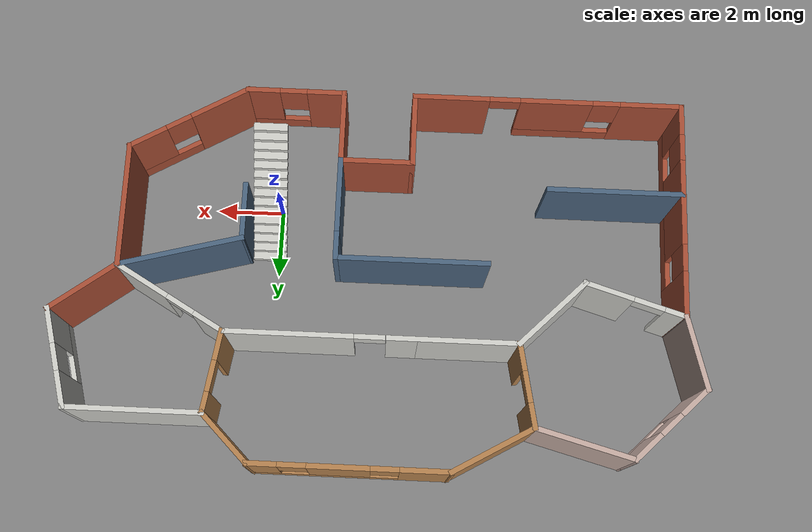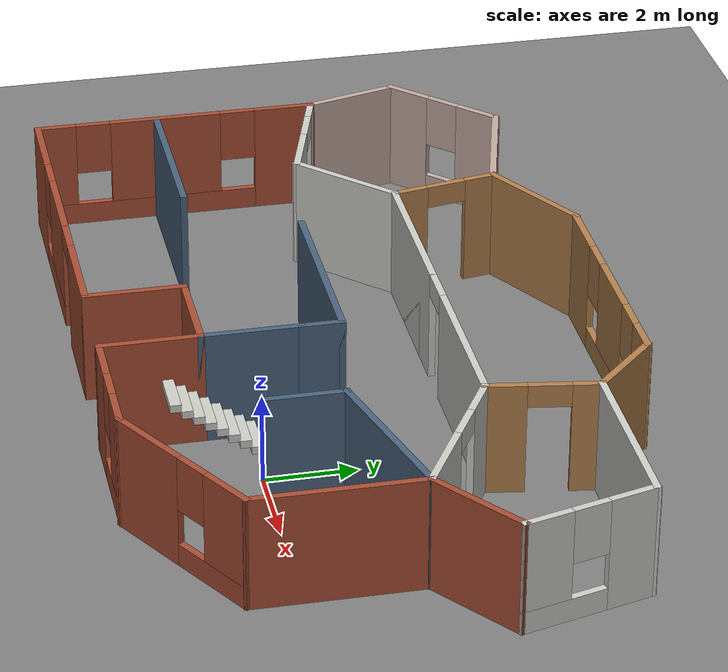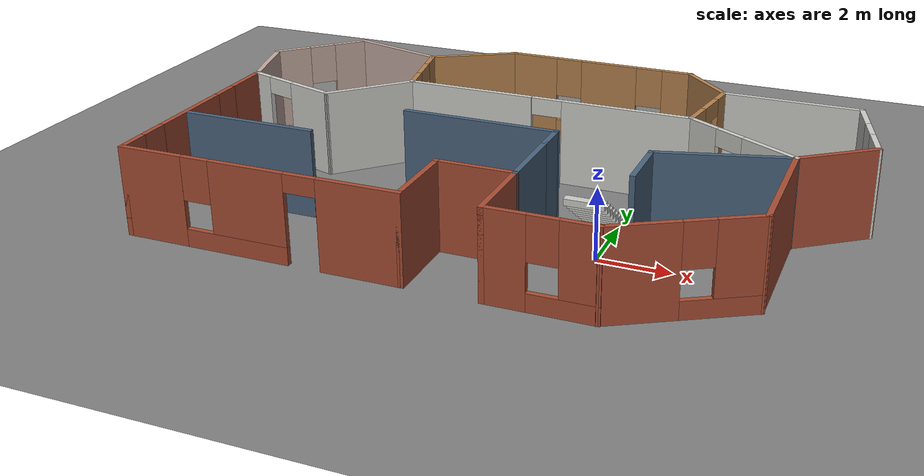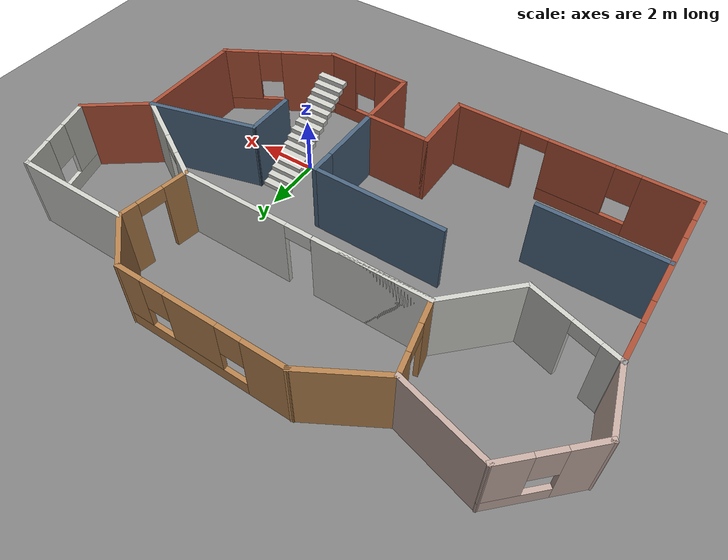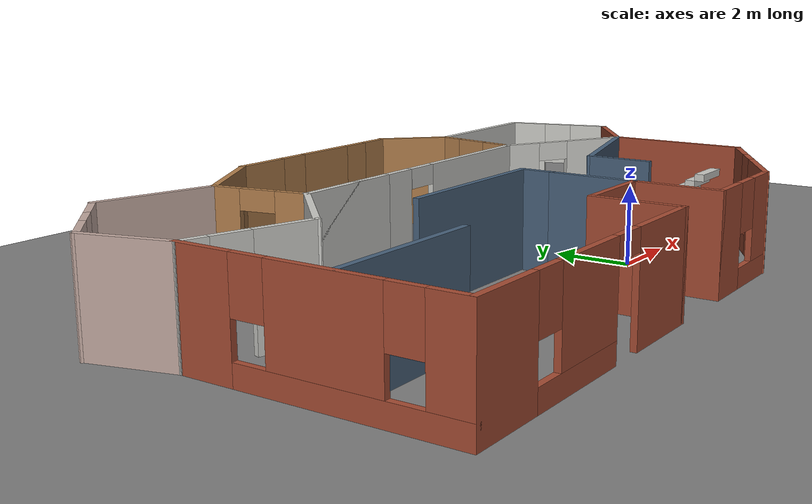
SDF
<sdf version="1.6">
 <world name="default">
  <model name="ground_plane">
   <static>1</static>
   <link name="link">
    <collision name="collision">
     <geometry><plane><normal>0 0 1</normal><size>100 100</size></plane></geometry>
    </collision>
    <visual name="visual">
     <geometry><plane><normal>0 0 1</normal><size>100 100</size></plane></geometry>
     <material>
      <ambient>0.5 0.5 0.5 1</ambient>
      <diffuse>0.5 0.5 0.5 1</diffuse>
      <specular>0.1 0.1 0.1 1</specular>
     </material>
    </visual>
   </link>
  </model>
  <model name="Office">
   <pose>-3.04392 2.451 0 0 -0 0</pose>
   <link name="Stairs_0">
    <visual name="Stairs_0_Visual_0">
     <pose>3.33571 -1.04566 0.083333 0 -0 0</pose>
     <geometry><box><size>1 0.233333 0.166667</size></box></geometry>
     <material>
      <script><uri>file://media/materials/scripts/gazebo.material</uri><name>Gazebo/CeilingTiled</name></script>
      <ambient>1 1 1 1</ambient>
     </material>
     <meta><layer>0</layer></meta>
    </visual>
    <collision name="Stairs_0_Collision_0">
     <geometry><box><size>1 0.233333 0.166667</size></box></geometry>
     <pose>3.33571 -1.04566 0.083333 0 -0 0</pose>
    </collision>
    <visual name="Stairs_0_Visual_1">
     <pose>3.33571 -1.279 0.25 0 -0 0</pose>
     <geometry><box><size>1 0.233333 0.166667</size></box></geometry>
     <material>
      <script><uri>file://media/materials/scripts/gazebo.material</uri><name>Gazebo/CeilingTiled</name></script>
      <ambient>1 1 1 1</ambient>
     </material>
     <meta><layer>0</layer></meta>
    </visual>
    <collision name="Stairs_0_Collision_1">
     <geometry><box><size>1 0.233333 0.166667</size></box></geometry>
     <pose>3.33571 -1.279 0.25 0 -0 0</pose>
    </collision>
    <visual name="Stairs_0_Visual_2">
     <pose>3.33571 -1.51233 0.416667 0 -0 0</pose>
     <geometry><box><size>1 0.233333 0.166667</size></box></geometry>
     <material>
      <script><uri>file://media/materials/scripts/gazebo.material</uri><name>Gazebo/CeilingTiled</name></script>
      <ambient>1 1 1 1</ambient>
     </material>
     <meta><layer>0</layer></meta>
    </visual>
    <collision name="Stairs_0_Collision_2">
     <geometry><box><size>1 0.233333 0.166667</size></box></geometry>
     <pose>3.33571 -1.51233 0.416667 0 -0 0</pose>
    </collision>
    <visual name="Stairs_0_Visual_3">
     <pose>3.33571 -1.74566 0.583333 0 -0 0</pose>
     <geometry><box><size>1 0.233333 0.166667</size></box></geometry>
     <material>
      <script><uri>file://media/materials/scripts/gazebo.material</uri><name>Gazebo/CeilingTiled</name></script>
      <ambient>1 1 1 1</ambient>
     </material>
     <meta><layer>0</layer></meta>
    </visual>
    <collision name="Stairs_0_Collision_3">
     <geometry><box><size>1 0.233333 0.166667</size></box></geometry>
     <pose>3.33571 -1.74566 0.583333 0 -0 0</pose>
    </collision>
    <visual name="Stairs_0_Visual_4">
     <pose>3.33571 -1.979 0.75 0 -0 0</pose>
     <geometry><box><size>1 0.233333 0.166667</size></box></geometry>
     <material>
      <script><uri>file://media/materials/scripts/gazebo.material</uri><name>Gazebo/CeilingTiled</name></script>
      <ambient>1 1 1 1</ambient>
     </material>
     <meta><layer>0</layer></meta>
    </visual>
    <collision name="Stairs_0_Collision_4">
     <geometry><box><size>1 0.233333 0.166667</size></box></geometry>
     <pose>3.33571 -1.979 0.75 0 -0 0</pose>
    </collision>
    <visual name="Stairs_0_Visual_5">
     <pose>3.33571 -2.21233 0.916667 0 -0 0</pose>
     <geometry><box><size>1 0.233333 0.166667</size></box></geometry>
     <material>
      <script><uri>file://media/materials/scripts/gazebo.material</uri><name>Gazebo/CeilingTiled</name></script>
      <ambient>1 1 1 1</ambient>
     </material>
     <meta><layer>0</layer></meta>
    </visual>
    <collision name="Stairs_0_Collision_5">
     <geometry><box><size>1 0.233333 0.166667</size></box></geometry>
     <pose>3.33571 -2.21233 0.916667 0 -0 0</pose>
    </collision>
    <visual name="Stairs_0_Visual_6">
     <pose>3.33571 -2.44566 1.08333 0 -0 0</pose>
     <geometry><box><size>1 0.233333 0.166667</size></box></geometry>
     <material>
      <script><uri>file://media/materials/scripts/gazebo.material</uri><name>Gazebo/CeilingTiled</name></script>
      <ambient>1 1 1 1</ambient>
     </material>
     <meta><layer>0</layer></meta>
    </visual>
    <collision name="Stairs_0_Collision_6">
     <geometry><box><size>1 0.233333 0.166667</size></box></geometry>
     <pose>3.33571 -2.44566 1.08333 0 -0 0</pose>
    </collision>
    <visual name="Stairs_0_Visual_7">
     <pose>3.33571 -2.679 1.25 0 -0 0</pose>
     <geometry><box><size>1 0.233333 0.166667</size></box></geometry>
     <material>
      <script><uri>file://media/materials/scripts/gazebo.material</uri><name>Gazebo/CeilingTiled</name></script>
      <ambient>1 1 1 1</ambient>
     </material>
     <meta><layer>0</layer></meta>
    </visual>
    <collision name="Stairs_0_Collision_7">
     <geometry><box><size>1 0.233333 0.166667</size></box></geometry>
     <pose>3.33571 -2.679 1.25 0 -0 0</pose>
    </collision>
    <visual name="Stairs_0_Visual_8">
     <pose>3.33571 -2.91233 1.41667 0 -0 0</pose>
     <geometry><box><size>1 0.233333 0.166667</size></box></geometry>
     <material>
      <script><uri>file://media/materials/scripts/gazebo.material</uri><name>Gazebo/CeilingTiled</name></script>
      <ambient>1 1 1 1</ambient>
     </material>
     <meta><layer>0</layer></meta>
    </visual>
    <collision name="Stairs_0_Collision_8">
     <geometry><box><size>1 0.233333 0.166667</size></box></geometry>
     <pose>3.33571 -2.91233 1.41667 0 -0 0</pose>
    </collision>
    <visual name="Stairs_0_Visual_9">
     <pose>3.33571 -3.14566 1.58333 0 -0 0</pose>
     <geometry><box><size>1 0.233333 0.166667</size></box></geometry>
     <material>
      <script><uri>file://media/materials/scripts/gazebo.material</uri><name>Gazebo/CeilingTiled</name></script>
      <ambient>1 1 1 1</ambient>
     </material>
     <meta><layer>0</layer></meta>
    </visual>
    <collision name="Stairs_0_Collision_9">
     <geometry><box><size>1 0.233333 0.166667</size></box></geometry>
     <pose>3.33571 -3.14566 1.58333 0 -0 0</pose>
    </collision>
    <visual name="Stairs_0_Visual_10">
     <pose>3.33571 -3.379 1.75 0 -0 0</pose>
     <geometry><box><size>1 0.233333 0.166667</size></box></geometry>
     <material>
      <script><uri>file://media/materials/scripts/gazebo.material</uri><name>Gazebo/CeilingTiled</name></script>
      <ambient>1 1 1 1</ambient>
     </material>
     <meta><layer>0</layer></meta>
    </visual>
    <collision name="Stairs_0_Collision_10">
     <geometry><box><size>1 0.233333 0.166667</size></box></geometry>
     <pose>3.33571 -3.379 1.75 0 -0 0</pose>
    </collision>
    <visual name="Stairs_0_Visual_11">
     <pose>3.33571 -3.61233 1.91667 0 -0 0</pose>
     <geometry><box><size>1 0.233333 0.166667</size></box></geometry>
     <material>
      <script><uri>file://media/materials/scripts/gazebo.material</uri><name>Gazebo/CeilingTiled</name></script>
      <ambient>1 1 1 1</ambient>
     </material>
     <meta><layer>0</layer></meta>
    </visual>
    <collision name="Stairs_0_Collision_11">
     <geometry><box><size>1 0.233333 0.166667</size></box></geometry>
     <pose>3.33571 -3.61233 1.91667 0 -0 0</pose>
    </collision>
    <visual name="Stairs_0_Visual_12">
     <pose>3.33571 -3.84566 2.08333 0 -0 0</pose>
     <geometry><box><size>1 0.233333 0.166667</size></box></geometry>
     <material>
      <script><uri>file://media/materials/scripts/gazebo.material</uri><name>Gazebo/CeilingTiled</name></script>
      <ambient>1 1 1 1</ambient>
     </material>
     <meta><layer>0</layer></meta>
    </visual>
    <collision name="Stairs_0_Collision_12">
     <geometry><box><size>1 0.233333 0.166667</size></box></geometry>
     <pose>3.33571 -3.84566 2.08333 0 -0 0</pose>
    </collision>
    <visual name="Stairs_0_Visual_13">
     <pose>3.33571 -4.079 2.25 0 -0 0</pose>
     <geometry><box><size>1 0.233333 0.166667</size></box></geometry>
     <material>
      <script><uri>file://media/materials/scripts/gazebo.material</uri><name>Gazebo/CeilingTiled</name></script>
      <ambient>1 1 1 1</ambient>
     </material>
     <meta><layer>0</layer></meta>
    </visual>
    <collision name="Stairs_0_Collision_13">
     <geometry><box><size>1 0.233333 0.166667</size></box></geometry>
     <pose>3.33571 -4.079 2.25 0 -0 0</pose>
    </collision>
    <visual name="Stairs_0_Visual_14">
     <pose>3.33571 -4.31233 2.41667 0 -0 0</pose>
     <geometry><box><size>1 0.233333 0.166667</size></box></geometry>
     <material>
      <script><uri>file://media/materials/scripts/gazebo.material</uri><name>Gazebo/CeilingTiled</name></script>
      <ambient>1 1 1 1</ambient>
     </material>
     <meta><layer>0</layer></meta>
    </visual>
    <collision name="Stairs_0_Collision_14">
     <geometry><box><size>1 0.233333 0.166667</size></box></geometry>
     <pose>3.33571 -4.31233 2.41667 0 -0 0</pose>
    </collision>
   </link>
   <link name="Wall_1">
    <pose>-8.71372 -2.30484 0 0 0 -1.5708</pose>
    <visual name="Wall_1_Visual_0">
     <pose>-2.54455 0 1.25 0 -0 0</pose>
     <geometry><box><size>1.4109 0.15 2.5</size></box></geometry>
     <material>
      <script><uri>file://media/materials/scripts/gazebo.material</uri><name>Gazebo/Bricks</name></script>
      <ambient>1 1 1 1</ambient>
     </material>
     <meta><layer>0</layer></meta>
    </visual>
    <collision name="Wall_1_Collision_0">
     <geometry><box><size>1.4109 0.15 2.5</size></box></geometry>
     <pose>-2.54455 0 1.25 0 -0 0</pose>
    </collision>
    <visual name="Wall_1_Visual_1">
     <pose>0.70545 0 0.25 0 -0 0</pose>
     <geometry><box><size>5.0891 0.15 0.5</size></box></geometry>
     <material>
      <script><uri>file://media/materials/scripts/gazebo.material</uri><name>Gazebo/Bricks</name></script>
      <ambient>1 1 1 1</ambient>
     </material>
     <meta><layer>0</layer></meta>
    </visual>
    <collision name="Wall_1_Collision_1">
     <geometry><box><size>5.0891 0.15 0.5</size></box></geometry>
     <pose>0.70545 0 0.25 0 -0 0</pose>
    </collision>
    <visual name="Wall_1_Visual_2">
     <pose>0.236713 0 1.5 0 -0 0</pose>
     <geometry><box><size>2.55163 0.15 2</size></box></geometry>
     <material>
      <script><uri>file://media/materials/scripts/gazebo.material</uri><name>Gazebo/Bricks</name></script>
      <ambient>1 1 1 1</ambient>
     </material>
     <meta><layer>0</layer></meta>
    </visual>
    <collision name="Wall_1_Collision_2">
     <geometry><box><size>2.55163 0.15 2</size></box></geometry>
     <pose>0.236713 0 1.5 0 -0 0</pose>
    </collision>
    <visual name="Wall_1_Visual_3">
     <pose>2.78126 0 1.5 0 -0 0</pose>
     <geometry><box><size>0.937474 0.15 2</size></box></geometry>
     <material>
      <script><uri>file://media/materials/scripts/gazebo.material</uri><name>Gazebo/Bricks</name></script>
      <ambient>1 1 1 1</ambient>
     </material>
     <meta><layer>0</layer></meta>
    </visual>
    <collision name="Wall_1_Collision_3">
     <geometry><box><size>0.937474 0.15 2</size></box></geometry>
     <pose>2.78126 0 1.5 0 -0 0</pose>
    </collision>
    <visual name="Wall_1_Visual_4">
     <pose>-1.4391 0 1.9 0 -0 0</pose>
     <geometry><box><size>0.8 0.15 1.2</size></box></geometry>
     <material>
      <script><uri>file://media/materials/scripts/gazebo.material</uri><name>Gazebo/Bricks</name></script>
      <ambient>1 1 1 1</ambient>
     </material>
     <meta><layer>0</layer></meta>
    </visual>
    <collision name="Wall_1_Collision_4">
     <geometry><box><size>0.8 0.15 1.2</size></box></geometry>
     <pose>-1.4391 0 1.9 0 -0 0</pose>
    </collision>
    <visual name="Wall_1_Visual_5">
     <pose>1.91253 0 1.9 0 -0 0</pose>
     <geometry><box><size>0.8 0.15 1.2</size></box></geometry>
     <material>
      <script><uri>file://media/materials/scripts/gazebo.material</uri><name>Gazebo/Bricks</name></script>
      <ambient>1 1 1 1</ambient>
     </material>
     <meta><layer>0</layer></meta>
    </visual>
    <collision name="Wall_1_Collision_5">
     <geometry><box><size>0.8 0.15 1.2</size></box></geometry>
     <pose>1.91253 0 1.9 0 -0 0</pose>
    </collision>
   </link>
   <link name="Wall_10">
    <pose>0.127786 1.84516 0 0 -0 3.14159</pose>
    <visual name="Wall_10_Visual_0">
     <pose>-2.36055 0 1.25 0 -0 0</pose>
     <geometry><box><size>3.77889 0.15 2.5</size></box></geometry>
     <material>
      <script><uri>file://media/materials/scripts/gazebo.material</uri><name>Gazebo/CeilingTiled</name></script>
      <ambient>1 1 1 1</ambient>
     </material>
     <meta><layer>0</layer></meta>
    </visual>
    <collision name="Wall_10_Collision_0">
     <geometry><box><size>3.77889 0.15 2.5</size></box></geometry>
     <pose>-2.36055 0 1.25 0 -0 0</pose>
    </collision>
    <visual name="Wall_10_Visual_1">
     <pose>2.33945 0 1.25 0 -0 0</pose>
     <geometry><box><size>3.82111 0.15 2.5</size></box></geometry>
     <material>
      <script><uri>file://media/materials/scripts/gazebo.material</uri><name>Gazebo/CeilingTiled</name></script>
      <ambient>1 1 1 1</ambient>
     </material>
     <meta><layer>0</layer></meta>
    </visual>
    <collision name="Wall_10_Collision_1">
     <geometry><box><size>3.82111 0.15 2.5</size></box></geometry>
     <pose>2.33945 0 1.25 0 -0 0</pose>
    </collision>
    <visual name="Wall_10_Visual_2">
     <pose>2.78446 0 1.25 0 -0 0</pose>
     <geometry><box><size>2.93108 0.15 2.5</size></box></geometry>
     <material>
      <script><uri>file://media/materials/scripts/gazebo.material</uri><name>Gazebo/CeilingTiled</name></script>
      <ambient>1 1 1 1</ambient>
     </material>
     <meta><layer>0</layer></meta>
    </visual>
    <collision name="Wall_10_Collision_2">
     <geometry><box><size>2.93108 0.15 2.5</size></box></geometry>
     <pose>2.78446 0 1.25 0 -0 0</pose>
    </collision>
    <visual name="Wall_10_Visual_3">
     <pose>-0.026096 0 2.25 0 -0 0</pose>
     <geometry><box><size>0.890023 0.15 0.5</size></box></geometry>
     <material>
      <script><uri>file://media/materials/scripts/gazebo.material</uri><name>Gazebo/CeilingTiled</name></script>
      <ambient>1 1 1 1</ambient>
     </material>
     <meta><layer>0</layer></meta>
    </visual>
    <collision name="Wall_10_Collision_3">
     <geometry><box><size>0.890023 0.15 0.5</size></box></geometry>
     <pose>-0.026096 0 2.25 0 -0 0</pose>
    </collision>
   </link>
   <link name="Wall_11">
    <collision name="Wall_11_Collision">
     <geometry><box><size>2.75 0.15 2.5</size></box></geometry>
     <pose>0 0 1.25 0 -0 0</pose>
    </collision>
    <visual name="Wall_11_Visual">
     <pose>0 0 1.25 0 -0 0</pose>
     <geometry><box><size>2.75 0.15 2.5</size></box></geometry>
     <material>
      <script><uri>file://media/materials/scripts/gazebo.material</uri><name>Gazebo/CeilingTiled</name></script>
      <ambient>0.760784 0.662745 0.627451 1</ambient>
     </material>
     <meta><layer>0</layer></meta>
    </visual>
    <pose>-4.96645 0.925922 0 0 0 -2.35619</pose>
   </link>
   <link name="Wall_12">
    <pose>-7.29971 0.438422 0 0 -0 2.84525</pose>
    <visual name="Wall_12_Visual_0">
     <pose>-0.801772 0 1.25 0 -0 0</pose>
     <geometry><box><size>1.50337 0.15 2.5</size></box></geometry>
     <material>
      <script><uri>file://media/materials/scripts/gazebo.material</uri><name>Gazebo/CeilingTiled</name></script>
      <ambient>0.760784 0.662745 0.627451 1</ambient>
     </material>
     <meta><layer>0</layer></meta>
    </visual>
    <collision name="Wall_12_Collision_0">
     <geometry><box><size>1.50337 0.15 2.5</size></box></geometry>
     <pose>-0.801772 0 1.25 0 -0 0</pose>
    </collision>
    <visual name="Wall_12_Visual_1">
     <pose>1.20168 0 1.25 0 -0 0</pose>
     <geometry><box><size>0.703545 0.15 2.5</size></box></geometry>
     <material>
      <script><uri>file://media/materials/scripts/gazebo.material</uri><name>Gazebo/CeilingTiled</name></script>
      <ambient>0.760784 0.662745 0.627451 1</ambient>
     </material>
     <meta><layer>0</layer></meta>
    </visual>
    <collision name="Wall_12_Collision_1">
     <geometry><box><size>0.703545 0.15 2.5</size></box></geometry>
     <pose>1.20168 0 1.25 0 -0 0</pose>
    </collision>
    <visual name="Wall_12_Visual_2">
     <pose>0.399912 0 2.25 0 -0 0</pose>
     <geometry><box><size>0.9 0.15 0.5</size></box></geometry>
     <material>
      <script><uri>file://media/materials/scripts/gazebo.material</uri><name>Gazebo/CeilingTiled</name></script>
      <ambient>0.760784 0.662745 0.627451 1</ambient>
     </material>
     <meta><layer>0</layer></meta>
    </visual>
    <collision name="Wall_12_Collision_2">
     <geometry><box><size>0.9 0.15 0.5</size></box></geometry>
     <pose>0.399912 0 2.25 0 -0 0</pose>
    </collision>
   </link>
   <link name="Wall_13">
    <collision name="Wall_13_Collision">
     <geometry><box><size>0.15 0.15 2.5</size></box></geometry>
     <pose>0 0 1.25 0 -0 0</pose>
    </collision>
    <visual name="Wall_13_Visual">
     <pose>0 0 1.25 0 -0 0</pose>
     <geometry><box><size>0.15 0.15 2.5</size></box></geometry>
     <material>
      <script><uri>file://media/materials/scripts/gazebo.material</uri><name>Gazebo/Grey</name></script>
      <ambient>1 1 1 1</ambient>
     </material>
     <meta><layer>0</layer></meta>
    </visual>
    <pose>-8.71372 0.870161 0 0 -0 0</pose>
   </link>
   <link name="Wall_17">
    <collision name="Wall_17_Collision">
     <geometry><box><size>2.25 0.15 2.5</size></box></geometry>
     <pose>0 0 1.25 0 -0 0</pose>
    </collision>
    <visual name="Wall_17_Visual">
     <pose>0 0 1.25 0 -0 0</pose>
     <geometry><box><size>2.25 0.15 2.5</size></box></geometry>
     <material>
      <script><uri>file://media/materials/scripts/gazebo.material</uri><name>Gazebo/Grey</name></script>
      <ambient>0.760784 0.662745 0.627451 1</ambient>
     </material>
     <meta><layer>0</layer></meta>
    </visual>
    <pose>-8.98548 1.88438 0 0 -0 1.8326</pose>
   </link>
   <link name="Wall_18">
    <pose>-8.24961 3.90623 0 0 -0 0.785398</pose>
    <visual name="Wall_18_Visual_0">
     <pose>-0.945432 0 1.25 0 -0 0</pose>
     <geometry><box><size>1.10913 0.15 2.5</size></box></geometry>
     <material>
      <script><uri>file://media/materials/scripts/gazebo.material</uri><name>Gazebo/Grey</name></script>
      <ambient>0.760784 0.662745 0.627451 1</ambient>
     </material>
     <meta><layer>0</layer></meta>
    </visual>
    <collision name="Wall_18_Collision_0">
     <geometry><box><size>1.10913 0.15 2.5</size></box></geometry>
     <pose>-0.945432 0 1.25 0 -0 0</pose>
    </collision>
    <visual name="Wall_18_Visual_1">
     <pose>0.554568 0 0.25 0 -0 0</pose>
     <geometry><box><size>1.89087 0.15 0.5</size></box></geometry>
     <material>
      <script><uri>file://media/materials/scripts/gazebo.material</uri><name>Gazebo/Grey</name></script>
      <ambient>0.760784 0.662745 0.627451 1</ambient>
     </material>
     <meta><layer>0</layer></meta>
    </visual>
    <collision name="Wall_18_Collision_1">
     <geometry><box><size>1.89087 0.15 0.5</size></box></geometry>
     <pose>0.554568 0 0.25 0 -0 0</pose>
    </collision>
    <visual name="Wall_18_Visual_2">
     <pose>0.954568 0 1.5 0 -0 0</pose>
     <geometry><box><size>1.09086 0.15 2</size></box></geometry>
     <material>
      <script><uri>file://media/materials/scripts/gazebo.material</uri><name>Gazebo/Grey</name></script>
      <ambient>0.760784 0.662745 0.627451 1</ambient>
     </material>
     <meta><layer>0</layer></meta>
    </visual>
    <collision name="Wall_18_Collision_2">
     <geometry><box><size>1.09086 0.15 2</size></box></geometry>
     <pose>0.954568 0 1.5 0 -0 0</pose>
    </collision>
    <visual name="Wall_18_Visual_3">
     <pose>0.009135 0 1.9 0 -0 0</pose>
     <geometry><box><size>0.8 0.15 1.2</size></box></geometry>
     <material>
      <script><uri>file://media/materials/scripts/gazebo.material</uri><name>Gazebo/Grey</name></script>
      <ambient>0.760784 0.662745 0.627451 1</ambient>
     </material>
     <meta><layer>0</layer></meta>
    </visual>
    <collision name="Wall_18_Collision_3">
     <geometry><box><size>0.8 0.15 1.2</size></box></geometry>
     <pose>0.009135 0 1.9 0 -0 0</pose>
    </collision>
   </link>
   <link name="Wall_19">
    <collision name="Wall_19_Collision">
     <geometry><box><size>3 0.15 2.5</size></box></geometry>
     <pose>0 0 1.25 0 -0 0</pose>
    </collision>
    <visual name="Wall_19_Visual">
     <pose>0 0 1.25 0 -0 0</pose>
     <geometry><box><size>3 0.15 2.5</size></box></geometry>
     <material>
      <script><uri>file://media/materials/scripts/gazebo.material</uri><name>Gazebo/Grey</name></script>
      <ambient>0.760784 0.662745 0.627451 1</ambient>
     </material>
     <meta><layer>0</layer></meta>
    </visual>
    <pose>-5.86554 4.54504 0 0 0 -0.261799</pose>
   </link>
   <link name="Wall_2">
    <pose>-4.78872 -5.47984 0 0 -0 0</pose>
    <visual name="Wall_2_Visual_0">
     <pose>-3.06397 0 1.25 0 -0 0</pose>
     <geometry><box><size>1.87207 0.15 2.5</size></box></geometry>
     <material>
      <script><uri>file://media/materials/scripts/gazebo.material</uri><name>Gazebo/Bricks</name></script>
      <ambient>1 1 1 1</ambient>
     </material>
     <meta><layer>0</layer></meta>
    </visual>
    <collision name="Wall_2_Collision_0">
     <geometry><box><size>1.87207 0.15 2.5</size></box></geometry>
     <pose>-3.06397 0 1.25 0 -0 0</pose>
    </collision>
    <visual name="Wall_2_Visual_1">
     <pose>2.85602 0 1.25 0 -0 0</pose>
     <geometry><box><size>2.28796 0.15 2.5</size></box></geometry>
     <material>
      <script><uri>file://media/materials/scripts/gazebo.material</uri><name>Gazebo/Bricks</name></script>
      <ambient>1 1 1 1</ambient>
     </material>
     <meta><layer>0</layer></meta>
    </visual>
    <collision name="Wall_2_Collision_1">
     <geometry><box><size>2.28796 0.15 2.5</size></box></geometry>
     <pose>2.85602 0 1.25 0 -0 0</pose>
    </collision>
    <visual name="Wall_2_Visual_2">
     <pose>-0.657948 0 0.25 0 -0 0</pose>
     <geometry><box><size>2.93997 0.15 0.5</size></box></geometry>
     <material>
      <script><uri>file://media/materials/scripts/gazebo.material</uri><name>Gazebo/Bricks</name></script>
      <ambient>1 1 1 1</ambient>
     </material>
     <meta><layer>0</layer></meta>
    </visual>
    <collision name="Wall_2_Collision_2">
     <geometry><box><size>2.93997 0.15 0.5</size></box></geometry>
     <pose>-0.657948 0 0.25 0 -0 0</pose>
    </collision>
    <visual name="Wall_2_Visual_3">
     <pose>-0.257948 0 1.5 0 -0 0</pose>
     <geometry><box><size>2.13997 0.15 2</size></box></geometry>
     <material>
      <script><uri>file://media/materials/scripts/gazebo.material</uri><name>Gazebo/Bricks</name></script>
      <ambient>1 1 1 1</ambient>
     </material>
     <meta><layer>0</layer></meta>
    </visual>
    <collision name="Wall_2_Collision_3">
     <geometry><box><size>2.13997 0.15 2</size></box></geometry>
     <pose>-0.257948 0 1.5 0 -0 0</pose>
    </collision>
    <visual name="Wall_2_Visual_4">
     <pose>-1.72793 0 1.9 0 -0 0</pose>
     <geometry><box><size>0.8 0.15 1.2</size></box></geometry>
     <material>
      <script><uri>file://media/materials/scripts/gazebo.material</uri><name>Gazebo/Bricks</name></script>
      <ambient>1 1 1 1</ambient>
     </material>
     <meta><layer>0</layer></meta>
    </visual>
    <collision name="Wall_2_Collision_4">
     <geometry><box><size>0.8 0.15 1.2</size></box></geometry>
     <pose>-1.72793 0 1.9 0 -0 0</pose>
    </collision>
    <visual name="Wall_2_Visual_5">
     <pose>1.26204 0 2.25 0 -0 0</pose>
     <geometry><box><size>0.9 0.15 0.5</size></box></geometry>
     <material>
      <script><uri>file://media/materials/scripts/gazebo.material</uri><name>Gazebo/Bricks</name></script>
      <ambient>1 1 1 1</ambient>
     </material>
     <meta><layer>0</layer></meta>
    </visual>
    <collision name="Wall_2_Collision_5">
     <geometry><box><size>0.9 0.15 0.5</size></box></geometry>
     <pose>1.26204 0 2.25 0 -0 0</pose>
    </collision>
   </link>
   <link name="Wall_20">
    <pose>-4.26816 3.01069 0 0 0 -1.38346</pose>
    <visual name="Wall_20_Visual_0">
     <pose>-0.872909 0 1.25 0 -0 0</pose>
     <geometry><box><size>0.77676 0.15 2.5</size></box></geometry>
     <material>
      <script><uri>file://media/materials/scripts/gazebo.material</uri><name>Gazebo/Wood</name></script>
      <ambient>1 1 1 1</ambient>
     </material>
     <meta><layer>0</layer></meta>
    </visual>
    <collision name="Wall_20_Collision_0">
     <geometry><box><size>0.77676 0.15 2.5</size></box></geometry>
     <pose>-0.872909 0 1.25 0 -0 0</pose>
    </collision>
    <visual name="Wall_20_Visual_1">
     <pose>0.83838 0 1.25 0 -0 0</pose>
     <geometry><box><size>0.845817 0.15 2.5</size></box></geometry>
     <material>
      <script><uri>file://media/materials/scripts/gazebo.material</uri><name>Gazebo/Wood</name></script>
      <ambient>1 1 1 1</ambient>
     </material>
     <meta><layer>0</layer></meta>
    </visual>
    <collision name="Wall_20_Collision_1">
     <geometry><box><size>0.845817 0.15 2.5</size></box></geometry>
     <pose>0.83838 0 1.25 0 -0 0</pose>
    </collision>
    <visual name="Wall_20_Visual_2">
     <pose>-0.034529 0 2.25 0 -0 0</pose>
     <geometry><box><size>0.9 0.15 0.5</size></box></geometry>
     <material>
      <script><uri>file://media/materials/scripts/gazebo.material</uri><name>Gazebo/Wood</name></script>
      <ambient>1 1 1 1</ambient>
     </material>
     <meta><layer>0</layer></meta>
    </visual>
    <collision name="Wall_20_Collision_2">
     <geometry><box><size>0.9 0.15 0.5</size></box></geometry>
     <pose>-0.034529 0 2.25 0 -0 0</pose>
    </collision>
   </link>
   <link name="Wall_22">
    <collision name="Wall_22_Collision">
     <geometry><box><size>2.75 0.15 2.5</size></box></geometry>
     <pose>0 0 1.25 0 -0 0</pose>
    </collision>
    <visual name="Wall_22_Visual">
     <pose>0 0 1.25 0 -0 0</pose>
     <geometry><box><size>2.75 0.15 2.5</size></box></geometry>
     <material>
      <script><uri>file://media/materials/scripts/gazebo.material</uri><name>Gazebo/Wood</name></script>
      <ambient>1 1 1 1</ambient>
     </material>
     <meta><layer>0</layer></meta>
    </visual>
    <pose>-3.36326 4.82622 0 0 -0 0.523599</pose>
   </link>
   <link name="Wall_23">
    <pose>0.562569 5.47623 0 0 -0 0</pose>
    <visual name="Wall_23_Visual_0">
     <pose>-2.13059 0 1.25 0 -0 0</pose>
     <geometry><box><size>1.48883 0.15 2.5</size></box></geometry>
     <material>
      <script><uri>file://media/materials/scripts/gazebo.material</uri><name>Gazebo/Wood</name></script>
      <ambient>1 1 1 1</ambient>
     </material>
     <meta><layer>0</layer></meta>
    </visual>
    <collision name="Wall_23_Collision_0">
     <geometry><box><size>1.48883 0.15 2.5</size></box></geometry>
     <pose>-2.13059 0 1.25 0 -0 0</pose>
    </collision>
    <visual name="Wall_23_Visual_1">
     <pose>0.744413 0 0.25 0 -0 0</pose>
     <geometry><box><size>4.26117 0.15 0.5</size></box></geometry>
     <material>
      <script><uri>file://media/materials/scripts/gazebo.material</uri><name>Gazebo/Wood</name></script>
      <ambient>1 1 1 1</ambient>
     </material>
     <meta><layer>0</layer></meta>
    </visual>
    <collision name="Wall_23_Collision_1">
     <geometry><box><size>4.26117 0.15 0.5</size></box></geometry>
     <pose>0.744413 0 0.25 0 -0 0</pose>
    </collision>
    <visual name="Wall_23_Visual_2">
     <pose>0.286009 0 1.5 0 -0 0</pose>
     <geometry><box><size>1.74437 0.15 2</size></box></geometry>
     <material>
      <script><uri>file://media/materials/scripts/gazebo.material</uri><name>Gazebo/Wood</name></script>
      <ambient>1 1 1 1</ambient>
     </material>
     <meta><layer>0</layer></meta>
    </visual>
    <collision name="Wall_23_Collision_2">
     <geometry><box><size>1.74437 0.15 2</size></box></geometry>
     <pose>0.286009 0 1.5 0 -0 0</pose>
    </collision>
    <visual name="Wall_23_Visual_3">
     <pose>2.4166 0 1.5 0 -0 0</pose>
     <geometry><box><size>0.916807 0.15 2</size></box></geometry>
     <material>
      <script><uri>file://media/materials/scripts/gazebo.material</uri><name>Gazebo/Wood</name></script>
      <ambient>1 1 1 1</ambient>
     </material>
     <meta><layer>0</layer></meta>
    </visual>
    <collision name="Wall_23_Collision_3">
     <geometry><box><size>0.916807 0.15 2</size></box></geometry>
     <pose>2.4166 0 1.5 0 -0 0</pose>
    </collision>
    <visual name="Wall_23_Visual_4">
     <pose>-0.986174 0 1.9 0 -0 0</pose>
     <geometry><box><size>0.8 0.15 1.2</size></box></geometry>
     <material>
      <script><uri>file://media/materials/scripts/gazebo.material</uri><name>Gazebo/Wood</name></script>
      <ambient>1 1 1 1</ambient>
     </material>
     <meta><layer>0</layer></meta>
    </visual>
    <collision name="Wall_23_Collision_4">
     <geometry><box><size>0.8 0.15 1.2</size></box></geometry>
     <pose>-0.986174 0 1.9 0 -0 0</pose>
    </collision>
    <visual name="Wall_23_Visual_5">
     <pose>1.55819 0 1.9 0 -0 0</pose>
     <geometry><box><size>0.8 0.15 1.2</size></box></geometry>
     <material>
      <script><uri>file://media/materials/scripts/gazebo.material</uri><name>Gazebo/Wood</name></script>
      <ambient>1 1 1 1</ambient>
     </material>
     <meta><layer>0</layer></meta>
    </visual>
    <collision name="Wall_23_Collision_5">
     <geometry><box><size>0.8 0.15 1.2</size></box></geometry>
     <pose>1.55819 0 1.9 0 -0 0</pose>
    </collision>
   </link>
   <link name="Wall_24">
    <collision name="Wall_24_Collision">
     <geometry><box><size>2 0.15 2.5</size></box></geometry>
     <pose>0 0 1.25 0 -0 0</pose>
    </collision>
    <visual name="Wall_24_Visual">
     <pose>0 0 1.25 0 -0 0</pose>
     <geometry><box><size>2 0.15 2.5</size></box></geometry>
     <material>
      <script><uri>file://media/materials/scripts/gazebo.material</uri><name>Gazebo/Wood</name></script>
      <ambient>1 1 1 1</ambient>
     </material>
     <meta><layer>0</layer></meta>
    </visual>
    <pose>4.01664 4.82215 0 0 0 -0.785398</pose>
   </link>
   <link name="Wall_25">
    <pose>4.48675 3.00662 0 0 0 -1.72788</pose>
    <visual name="Wall_25_Visual_0">
     <pose>-0.913451 0 1.25 0 -0 0</pose>
     <geometry><box><size>0.674972 0.15 2.5</size></box></geometry>
     <material>
      <script><uri>file://media/materials/scripts/gazebo.material</uri><name>Gazebo/Wood</name></script>
      <ambient>1 1 1 1</ambient>
     </material>
     <meta><layer>0</layer></meta>
    </visual>
    <collision name="Wall_25_Collision_0">
     <geometry><box><size>0.674972 0.15 2.5</size></box></geometry>
     <pose>-0.913451 0 1.25 0 -0 0</pose>
    </collision>
    <visual name="Wall_25_Visual_1">
     <pose>0.787486 0 1.25 0 -0 0</pose>
     <geometry><box><size>0.926902 0.15 2.5</size></box></geometry>
     <material>
      <script><uri>file://media/materials/scripts/gazebo.material</uri><name>Gazebo/Wood</name></script>
      <ambient>1 1 1 1</ambient>
     </material>
     <meta><layer>0</layer></meta>
    </visual>
    <collision name="Wall_25_Collision_1">
     <geometry><box><size>0.926902 0.15 2.5</size></box></geometry>
     <pose>0.787486 0 1.25 0 -0 0</pose>
    </collision>
    <visual name="Wall_25_Visual_2">
     <pose>-0.125965 0 2.25 0 -0 0</pose>
     <geometry><box><size>0.9 0.15 0.5</size></box></geometry>
     <material>
      <script><uri>file://media/materials/scripts/gazebo.material</uri><name>Gazebo/Wood</name></script>
      <ambient>1 1 1 1</ambient>
     </material>
     <meta><layer>0</layer></meta>
    </visual>
    <collision name="Wall_25_Collision_2">
     <geometry><box><size>0.9 0.15 0.5</size></box></geometry>
     <pose>-0.125965 0 2.25 0 -0 0</pose>
    </collision>
   </link>
   <link name="Wall_27">
    <collision name="Wall_27_Collision">
     <geometry><box><size>4 0.15 2.5</size></box></geometry>
     <pose>0 0 1.25 0 -0 0</pose>
    </collision>
    <visual name="Wall_27_Visual">
     <pose>0 0 1.25 0 -0 0</pose>
     <geometry><box><size>4 0.15 2.5</size></box></geometry>
     <material>
      <script><uri>file://media/materials/scripts/gazebo.material</uri><name>Gazebo/CeilingTiled</name></script>
      <ambient>1 1 1 1</ambient>
     </material>
     <meta><layer>0</layer></meta>
    </visual>
    <pose>6.59572 4.16808 0 0 -0 0</pose>
   </link>
   <link name="Wall_28">
    <pose>8.88953 2.79163 0 0 0 -1.309</pose>
    <visual name="Wall_28_Visual_0">
     <pose>-0.948837 0 1.25 0 -0 0</pose>
     <geometry><box><size>1.10233 0.15 2.5</size></box></geometry>
     <material>
      <script><uri>file://media/materials/scripts/gazebo.material</uri><name>Gazebo/CeilingTiled</name></script>
      <ambient>1 1 1 1</ambient>
     </material>
     <meta><layer>0</layer></meta>
    </visual>
    <collision name="Wall_28_Collision_0">
     <geometry><box><size>1.10233 0.15 2.5</size></box></geometry>
     <pose>-0.948837 0 1.25 0 -0 0</pose>
    </collision>
    <visual name="Wall_28_Visual_1">
     <pose>0.551163 0 0.25 0 -0 0</pose>
     <geometry><box><size>1.89767 0.15 0.5</size></box></geometry>
     <material>
      <script><uri>file://media/materials/scripts/gazebo.material</uri><name>Gazebo/CeilingTiled</name></script>
      <ambient>1 1 1 1</ambient>
     </material>
     <meta><layer>0</layer></meta>
    </visual>
    <collision name="Wall_28_Collision_1">
     <geometry><box><size>1.89767 0.15 0.5</size></box></geometry>
     <pose>0.551163 0 0.25 0 -0 0</pose>
    </collision>
    <visual name="Wall_28_Visual_2">
     <pose>0.951163 0 1.5 0 -0 0</pose>
     <geometry><box><size>1.09767 0.15 2</size></box></geometry>
     <material>
      <script><uri>file://media/materials/scripts/gazebo.material</uri><name>Gazebo/CeilingTiled</name></script>
      <ambient>1 1 1 1</ambient>
     </material>
     <meta><layer>0</layer></meta>
    </visual>
    <collision name="Wall_28_Collision_2">
     <geometry><box><size>1.09767 0.15 2</size></box></geometry>
     <pose>0.951163 0 1.5 0 -0 0</pose>
    </collision>
    <visual name="Wall_28_Visual_3">
     <pose>0.002327 0 1.9 0 -0 0</pose>
     <geometry><box><size>0.8 0.15 1.2</size></box></geometry>
     <material>
      <script><uri>file://media/materials/scripts/gazebo.material</uri><name>Gazebo/CeilingTiled</name></script>
      <ambient>1 1 1 1</ambient>
     </material>
     <meta><layer>0</layer></meta>
    </visual>
    <collision name="Wall_28_Collision_3">
     <geometry><box><size>0.8 0.15 1.2</size></box></geometry>
     <pose>0.002327 0 1.9 0 -0 0</pose>
    </collision>
   </link>
   <link name="Wall_29">
    <collision name="Wall_29_Collision">
     <geometry><box><size>2.44232 0.15 2.5</size></box></geometry>
     <pose>0 0 1.25 0 -0 0</pose>
    </collision>
    <visual name="Wall_29_Visual">
     <pose>0 0 1.25 0 -0 0</pose>
     <geometry><box><size>2.44232 0.15 2.5</size></box></geometry>
     <material>
      <script><uri>file://media/materials/scripts/gazebo.material</uri><name>Gazebo/Bricks</name></script>
      <ambient>1 1 1 1</ambient>
     </material>
     <meta><layer>0</layer></meta>
    </visual>
    <pose>8.33941 0.730175 0 0 0 -2.50102</pose>
   </link>
   <link name="Wall_3">
    <collision name="Wall_3_Collision">
     <geometry><box><size>2.25 0.15 2.5</size></box></geometry>
     <pose>0 0 1.25 0 -0 0</pose>
    </collision>
    <visual name="Wall_3_Visual">
     <pose>0 0 1.25 0 -0 0</pose>
     <geometry><box><size>2.25 0.15 2.5</size></box></geometry>
     <material>
      <script><uri>file://media/materials/scripts/gazebo.material</uri><name>Gazebo/Bricks</name></script>
      <ambient>1 1 1 1</ambient>
     </material>
     <meta><layer>0</layer></meta>
    </visual>
    <pose>-0.86372 -4.42984 0 0 -0 1.5708</pose>
   </link>
   <link name="Wall_30">
    <collision name="Wall_30_Collision">
     <geometry><box><size>3.75 0.15 2.5</size></box></geometry>
     <pose>0 0 1.25 0 -0 0</pose>
    </collision>
    <visual name="Wall_30_Visual">
     <pose>0 0 1.25 0 -0 0</pose>
     <geometry><box><size>3.75 0.15 2.5</size></box></geometry>
     <material>
      <script><uri>file://media/materials/scripts/gazebo.material</uri><name>Gazebo/Grey</name></script>
      <ambient>0.286275 0.384314 0.486275 1</ambient>
     </material>
     <meta><layer>0</layer></meta>
    </visual>
    <pose>5.68181 -0.420713 0 0 0 -2.87979</pose>
   </link>
   <link name="Wall_31">
    <collision name="Wall_31_Collision">
     <geometry><box><size>1.75 0.15 2.5</size></box></geometry>
     <pose>0 0 1.25 0 -0 0</pose>
    </collision>
    <visual name="Wall_31_Visual">
     <pose>0 0 1.25 0 -0 0</pose>
     <geometry><box><size>1.75 0.15 2.5</size></box></geometry>
     <material>
      <script><uri>file://media/materials/scripts/gazebo.material</uri><name>Gazebo/Grey</name></script>
      <ambient>0.286275 0.384314 0.486275 1</ambient>
     </material>
     <meta><layer>0</layer></meta>
    </visual>
    <pose>3.94314 -1.68659 0 0 0 -1.5708</pose>
   </link>
   <link name="Wall_33">
    <collision name="Wall_33_Collision">
     <geometry><box><size>4 0.15 2.5</size></box></geometry>
     <pose>0 0 1.25 0 -0 0</pose>
    </collision>
    <visual name="Wall_33_Visual">
     <pose>0 0 1.25 0 -0 0</pose>
     <geometry><box><size>4 0.15 2.5</size></box></geometry>
     <material>
      <script><uri>file://media/materials/scripts/gazebo.material</uri><name>Gazebo/Grey</name></script>
      <ambient>0.286275 0.384314 0.486275 1</ambient>
     </material>
     <meta><layer>0</layer></meta>
    </visual>
    <pose>-6.76403 -2.74712 0 0 -0 3.14159</pose>
   </link>
   <link name="Wall_35">
    <collision name="Wall_35_Collision">
     <geometry><box><size>2.25 0.15 2.5</size></box></geometry>
     <pose>0 0 1.25 0 -0 0</pose>
    </collision>
    <visual name="Wall_35_Visual">
     <pose>0 0 1.25 0 -0 0</pose>
     <geometry><box><size>2.25 0.15 2.5</size></box></geometry>
     <material>
      <script><uri>file://media/materials/scripts/gazebo.material</uri><name>Gazebo/Grey</name></script>
      <ambient>0.286275 0.384314 0.486275 1</ambient>
     </material>
     <meta><layer>0</layer></meta>
    </visual>
    <pose>1.23628 -2.32984 0 0 -0 1.5708</pose>
   </link>
   <link name="Wall_39">
    <collision name="Wall_39_Collision">
     <geometry><box><size>1 0.15 2.5</size></box></geometry>
     <pose>0 0 1.25 0 -0 0</pose>
    </collision>
    <visual name="Wall_39_Visual">
     <pose>0 0 1.25 0 -0 0</pose>
     <geometry><box><size>1 0.15 2.5</size></box></geometry>
     <material>
      <script><uri>file://media/materials/scripts/gazebo.material</uri><name>Gazebo/Grey</name></script>
      <ambient>0.286275 0.384314 0.486275 1</ambient>
     </material>
     <meta><layer>0</layer></meta>
    </visual>
    <pose>1.23628 -0.854839 0 0 -0 1.5708</pose>
   </link>
   <link name="Wall_4">
    <collision name="Wall_4_Collision">
     <geometry><box><size>2.25 0.15 2.5</size></box></geometry>
     <pose>0 0 1.25 0 -0 0</pose>
    </collision>
    <visual name="Wall_4_Visual">
     <pose>0 0 1.25 0 -0 0</pose>
     <geometry><box><size>2.25 0.15 2.5</size></box></geometry>
     <material>
      <script><uri>file://media/materials/scripts/gazebo.material</uri><name>Gazebo/Bricks</name></script>
      <ambient>1 1 1 1</ambient>
     </material>
     <meta><layer>0</layer></meta>
    </visual>
    <pose>0.18628 -3.37984 0 0 -0 0</pose>
   </link>
   <link name="Wall_40">
    <collision name="Wall_40_Collision">
     <geometry><box><size>4.5 0.15 2.5</size></box></geometry>
     <pose>0 0 1.25 0 -0 0</pose>
    </collision>
    <visual name="Wall_40_Visual">
     <pose>0 0 1.25 0 -0 0</pose>
     <geometry><box><size>4.5 0.15 2.5</size></box></geometry>
     <material>
      <script><uri>file://media/materials/scripts/gazebo.material</uri><name>Gazebo/Grey</name></script>
      <ambient>0.286275 0.384314 0.486275 1</ambient>
     </material>
     <meta><layer>0</layer></meta>
    </visual>
    <pose>-0.93872 -0.429839 0 0 -0 3.14159</pose>
   </link>
   <link name="Wall_5">
    <collision name="Wall_5_Collision">
     <geometry><box><size>2.25 0.15 2.5</size></box></geometry>
     <pose>0 0 1.25 0 -0 0</pose>
    </collision>
    <visual name="Wall_5_Visual">
     <pose>0 0 1.25 0 -0 0</pose>
     <geometry><box><size>2.25 0.15 2.5</size></box></geometry>
     <material>
      <script><uri>file://media/materials/scripts/gazebo.material</uri><name>Gazebo/Bricks</name></script>
      <ambient>1 1 1 1</ambient>
     </material>
     <meta><layer>0</layer></meta>
    </visual>
    <pose>1.23628 -4.42984 0 0 0 -1.5708</pose>
   </link>
   <link name="Wall_6">
    <pose>2.66128 -5.47984 0 0 -0 0</pose>
    <visual name="Wall_6_Visual_0">
     <pose>-0.910532 0 1.25 0 -0 0</pose>
     <geometry><box><size>1.17894 0.15 2.5</size></box></geometry>
     <material>
      <script><uri>file://media/materials/scripts/gazebo.material</uri><name>Gazebo/Bricks</name></script>
      <ambient>1 1 1 1</ambient>
     </material>
     <meta><layer>0</layer></meta>
    </visual>
    <collision name="Wall_6_Collision_0">
     <geometry><box><size>1.17894 0.15 2.5</size></box></geometry>
     <pose>-0.910532 0 1.25 0 -0 0</pose>
    </collision>
    <visual name="Wall_6_Visual_1">
     <pose>0.589468 0 0.25 0 -0 0</pose>
     <geometry><box><size>1.82106 0.15 0.5</size></box></geometry>
     <material>
      <script><uri>file://media/materials/scripts/gazebo.material</uri><name>Gazebo/Bricks</name></script>
      <ambient>1 1 1 1</ambient>
     </material>
     <meta><layer>0</layer></meta>
    </visual>
    <collision name="Wall_6_Collision_1">
     <geometry><box><size>1.82106 0.15 0.5</size></box></geometry>
     <pose>0.589468 0 0.25 0 -0 0</pose>
    </collision>
    <visual name="Wall_6_Visual_2">
     <pose>0.989468 0 1.5 0 -0 0</pose>
     <geometry><box><size>1.02106 0.15 2</size></box></geometry>
     <material>
      <script><uri>file://media/materials/scripts/gazebo.material</uri><name>Gazebo/Bricks</name></script>
      <ambient>1 1 1 1</ambient>
     </material>
     <meta><layer>0</layer></meta>
    </visual>
    <collision name="Wall_6_Collision_2">
     <geometry><box><size>1.02106 0.15 2</size></box></geometry>
     <pose>0.989468 0 1.5 0 -0 0</pose>
    </collision>
    <visual name="Wall_6_Visual_3">
     <pose>0.078935 0 1.9 0 -0 0</pose>
     <geometry><box><size>0.8 0.15 1.2</size></box></geometry>
     <material>
      <script><uri>file://media/materials/scripts/gazebo.material</uri><name>Gazebo/Bricks</name></script>
      <ambient>1 1 1 1</ambient>
     </material>
     <meta><layer>0</layer></meta>
    </visual>
    <collision name="Wall_6_Collision_3">
     <geometry><box><size>0.8 0.15 1.2</size></box></geometry>
     <pose>0.078935 0 1.9 0 -0 0</pose>
    </collision>
   </link>
   <link name="Wall_7">
    <pose>5.75338 -4.51734 0 0 -0 0.523599</pose>
    <visual name="Wall_7_Visual_0">
     <pose>-1.03165 0 1.25 0 -0 0</pose>
     <geometry><box><size>1.9367 0.15 2.5</size></box></geometry>
     <material>
      <script><uri>file://media/materials/scripts/gazebo.material</uri><name>Gazebo/Bricks</name></script>
      <ambient>1 1 1 1</ambient>
     </material>
     <meta><layer>0</layer></meta>
    </visual>
    <collision name="Wall_7_Collision_0">
     <geometry><box><size>1.9367 0.15 2.5</size></box></geometry>
     <pose>-1.03165 0 1.25 0 -0 0</pose>
    </collision>
    <visual name="Wall_7_Visual_1">
     <pose>0.968351 0 0.25 0 -0 0</pose>
     <geometry><box><size>2.0633 0.15 0.5</size></box></geometry>
     <material>
      <script><uri>file://media/materials/scripts/gazebo.material</uri><name>Gazebo/Bricks</name></script>
      <ambient>1 1 1 1</ambient>
     </material>
     <meta><layer>0</layer></meta>
    </visual>
    <collision name="Wall_7_Collision_1">
     <geometry><box><size>2.0633 0.15 0.5</size></box></geometry>
     <pose>0.968351 0 0.25 0 -0 0</pose>
    </collision>
    <visual name="Wall_7_Visual_2">
     <pose>1.36835 0 1.5 0 -0 0</pose>
     <geometry><box><size>1.2633 0.15 2</size></box></geometry>
     <material>
      <script><uri>file://media/materials/scripts/gazebo.material</uri><name>Gazebo/Bricks</name></script>
      <ambient>1 1 1 1</ambient>
     </material>
     <meta><layer>0</layer></meta>
    </visual>
    <collision name="Wall_7_Collision_2">
     <geometry><box><size>1.2633 0.15 2</size></box></geometry>
     <pose>1.36835 0 1.5 0 -0 0</pose>
    </collision>
    <visual name="Wall_7_Visual_3">
     <pose>0.336702 0 1.9 0 -0 0</pose>
     <geometry><box><size>0.8 0.15 1.2</size></box></geometry>
     <material>
      <script><uri>file://media/materials/scripts/gazebo.material</uri><name>Gazebo/Bricks</name></script>
      <ambient>1 1 1 1</ambient>
     </material>
     <meta><layer>0</layer></meta>
    </visual>
    <collision name="Wall_7_Collision_3">
     <geometry><box><size>0.8 0.15 1.2</size></box></geometry>
     <pose>0.336702 0 1.9 0 -0 0</pose>
    </collision>
   </link>
   <link name="Wall_8">
    <collision name="Wall_8_Collision">
     <geometry><box><size>3.75 0.15 2.5</size></box></geometry>
     <pose>0 0 1.25 0 -0 0</pose>
    </collision>
    <visual name="Wall_8_Visual">
     <pose>0 0 1.25 0 -0 0</pose>
     <geometry><box><size>3.75 0.15 2.5</size></box></geometry>
     <material>
      <script><uri>file://media/materials/scripts/gazebo.material</uri><name>Gazebo/Bricks</name></script>
      <ambient>1 1 1 1</ambient>
     </material>
     <meta><layer>0</layer></meta>
    </visual>
    <pose>7.42048 -1.75484 0 0 -0 1.5708</pose>
   </link>
   <link name="Wall_9">
    <pose>5.86163 0.945161 0 0 -0 2.61799</pose>
    <visual name="Wall_9_Visual_0">
     <pose>-0.96851 0 1.25 0 -0 0</pose>
     <geometry><box><size>1.81298 0.15 2.5</size></box></geometry>
     <material>
      <script><uri>file://media/materials/scripts/gazebo.material</uri><name>Gazebo/CeilingTiled</name></script>
      <ambient>1 1 1 1</ambient>
     </material>
     <meta><layer>0</layer></meta>
    </visual>
    <collision name="Wall_9_Collision_0">
     <geometry><box><size>1.81298 0.15 2.5</size></box></geometry>
     <pose>-0.96851 0 1.25 0 -0 0</pose>
    </collision>
    <visual name="Wall_9_Visual_1">
     <pose>1.35649 0 1.25 0 -0 0</pose>
     <geometry><box><size>1.03702 0.15 2.5</size></box></geometry>
     <material>
      <script><uri>file://media/materials/scripts/gazebo.material</uri><name>Gazebo/CeilingTiled</name></script>
      <ambient>1 1 1 1</ambient>
     </material>
     <meta><layer>0</layer></meta>
    </visual>
    <collision name="Wall_9_Collision_1">
     <geometry><box><size>1.03702 0.15 2.5</size></box></geometry>
     <pose>1.35649 0 1.25 0 -0 0</pose>
    </collision>
    <visual name="Wall_9_Visual_2">
     <pose>0.38798 0 2.25 0 -0 0</pose>
     <geometry><box><size>0.9 0.15 0.5</size></box></geometry>
     <material>
      <script><uri>file://media/materials/scripts/gazebo.material</uri><name>Gazebo/CeilingTiled</name></script>
      <ambient>1 1 1 1</ambient>
     </material>
     <meta><layer>0</layer></meta>
    </visual>
    <collision name="Wall_9_Collision_2">
     <geometry><box><size>0.9 0.15 0.5</size></box></geometry>
     <pose>0.38798 0 2.25 0 -0 0</pose>
    </collision>
   </link>
   <static>1</static>
  </model>
 </world>
</sdf>
